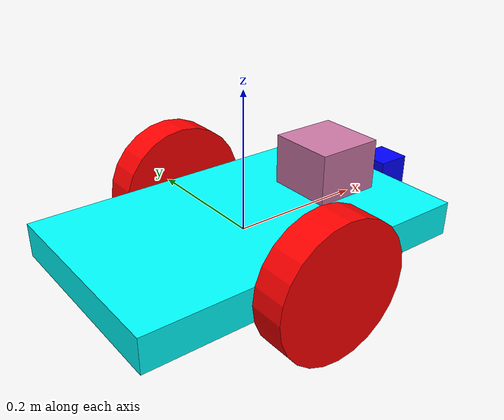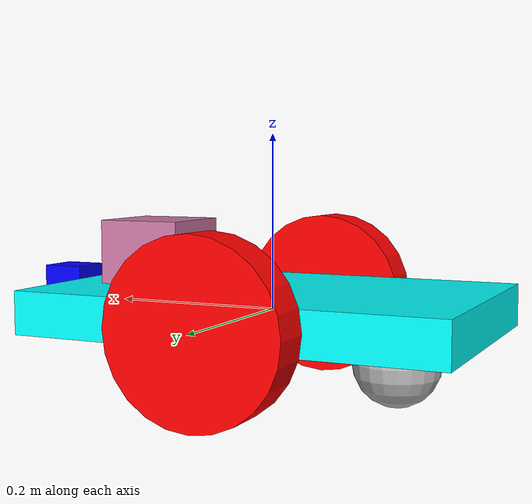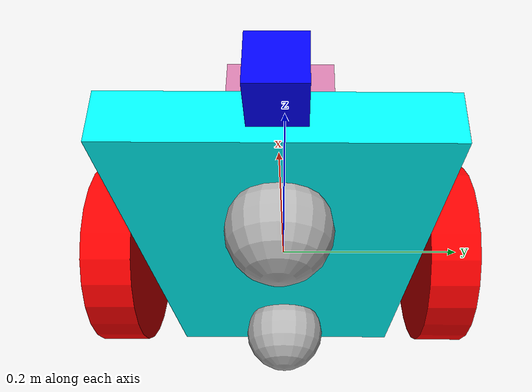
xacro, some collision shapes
<?xml version='1.0'?>

<robot name="my_robot" xmlns:xacro="http://www.ros.org/wiki/xacro">
  <xacro:include filename="$(find my_robot)/urdf/my_robot.gazebo" />

  <link name="robot_footprint"></link>

<link name="left_wheel">
		<visual>
			<origin xyz="0 0 0" rpy="0 1.5707 1.5707"/>
			<geometry>
				<cylinder length = "0.05" radius = "0.1"/>
			</geometry>
			<material name="red">
			  <color rgba = "1 0 0 1"/>
			</material>
		</visual>

		<collision>
			<origin xyz="0 0 0" rpy="0 1.5707 1.5707"/>
			<geometry>
				<cylinder length = "0.05" radius = "0.1"/>
			</geometry>

		</collision>

		<inertial>
      <mass value="5.0"/>
      <origin xyz="0.0 0 0" rpy=" 0 1.5707 1.5707"/>
      <inertia
          ixx="0.1" ixy="0" ixz="0"
          iyy="0.1" iyz="0"
          izz="0.1"
      />
    </inertial>

	</link>

	<link name="right_wheel">
		<visual>
			<origin xyz="0 0 0" rpy="0 1.5707 1.5707"/>
			<geometry>
				<cylinder length = "0.05" radius = "0.1"/>
			</geometry>
			<material name="red">
			  <color rgba = "1 0 0 1"/>
			</material>

		</visual>

		<collision>
			<origin xyz="0 0 0" rpy="0 1.5707 1.5707"/>
			<geometry>
				<cylinder length = "0.05" radius = "0.1"/>
			</geometry>

		</collision>

		<inertial>
      <mass value="5.0"/>
      <origin xyz="0.0 0 0" rpy=" 0 1.5707 1.5707"/>
      <inertia
          ixx="0.1" ixy="0" ixz="0"
          iyy="0.1" iyz="0"
          izz="0.1"
      />
    </inertial>

	</link>

	<link name="camera_rgbd_frame"></link>

<joint name="camera_rgbd_joint" type="fixed">
<origin xyz="0 0 0" rpy="-${pi/2} 0 -${pi/2}"/>
<parent link="camera"/>
<child link="camera_rgbd_frame"/>
</joint>

	<link name="camera">
	  <visual>
	    <geometry>
	      <box size="0.05 0.05 0.05"/>
	    </geometry>
	     <origin xyz="0 0 0" rpy="0 0 0"/>
	     <material name="blue">
			  <color rgba = "0 0 1 1"/>
			</material>
	  </visual>

	  <collision>
	  	<geometry>
	      <box size="0.05 0.05 0.05"/>
	    </geometry>
	    <origin xyz="0 0 0" rpy="0 0 0"/>
	  </collision>

	  <inertial>
	    <origin xyz="0 0 0" rpy="0 0 0"/>
	    <mass value="0.1"/>
	    <inertia
          ixx="1e-6" ixy="0" ixz="0"
          iyy="1e-6" iyz="0"
          izz="1e-6"
      	/>
	  </inertial>

	</link>

	  <joint name="camera_optical_joint" type="fixed">
    <origin xyz="0 0 0" rpy="-1.5707 0 -1.5707"/>
    <parent link="camera"/>
    <child link="camera_link_optical"/>
  </joint>

  <link name="camera_link_optical">
  </link>

	<link name="hokuyo">
	  <visual>
	    <origin xyz="0 0 0" rpy="0 0 0"/>
	    <geometry>
	      <mesh filename="package://my_robot/meshes/hokuyo.dae"/>
	    </geometry>
	  </visual>

	  <collision>
	    <origin xyz="0 0 0" rpy="0 0 0"/>
	    <geometry>
	      <box size="0.1 0.1 0.1"/>
	     </geometry>
	  </collision>

	  <inertial>
	    <origin xyz="0 0 0" rpy="0 0 0"/>
	    <mass value="1e-5"/>
	    <inertia
          ixx="1e-6" ixy="0" ixz="0"
          iyy="1e-6" iyz="0"
          izz="1e-6"
      	/>
	  </inertial>

	</link>

  <link name='chassis'>
    <pose>0 0 0.15 0 0 0</pose>

    <inertial>
      <mass value="15.0"/>
      <origin xyz="0.0 0 0" rpy=" 0 0 0"/>
      <inertia
          ixx="0.1" ixy="0" ixz="0"
          iyy="0.1" iyz="0"
          izz="0.1"
      />
    </inertial>

    <collision name='collision'>
      <origin xyz="0 0 0" rpy=" 0 0 0"/>
      <geometry>
        <box size=".5 .3 .05"/>
      </geometry>
    </collision>

    <visual name='chassis_visual'>
      <origin xyz="0 0 0" rpy=" 0 0 0"/>
      <geometry>
        <box size=".5 .3 .05"/>
      </geometry>
      <material name="cyan">
			  <color rgba = "0 1 1 1"/>
			</material>
    </visual>

    <collision name='back_caster_collision'>
      <origin xyz="-0.15 0 -0.05" rpy=" 0 0 0"/>
      <geometry>
        <sphere radius="0.0499"/>
      </geometry>
    </collision>

    <visual name='back_caster_visual'>
      <origin xyz="-0.15 0 -0.05" rpy=" 0 0 0"/>
      <geometry>
        <sphere radius="0.05"/>
      </geometry>
    </visual>

    <collision name='front_caster_collision'>
      <origin xyz="0.15 0 -0.05" rpy=" 0 0 0"/>
      <geometry>
        <sphere radius="0.0499"/>
      </geometry>
    </collision>

    <visual name='front_caster_visual'>
      <origin xyz="0.15 0 -0.05" rpy=" 0 0 0"/>
      <geometry>
        <sphere radius="0.05"/>
      </geometry>
    </visual>

  </link>

  <joint type="continuous" name="left_wheel_hinge">
    <origin xyz="0 -0.175 0" rpy="0 0 0"/>
    <child link="left_wheel"/>
    <parent link="chassis"/>
    <axis xyz="0 1 0" rpy="0 0 0"/>
    <limit effort="10000" velocity="1000"/>
    <dynamics damping="1.0" friction="1.0"/>
  </joint>

	<joint type="continuous" name="right_wheel_hinge">
    <origin xyz="0 0.175 0" rpy="0 0 0"/>
    <child link="right_wheel"/>
    <parent link="chassis"/>
    <axis xyz="0 1 0" rpy="0 0 0"/>
    <limit effort="10000" velocity="1000"/>
    <dynamics damping="1.0" friction="1.0"/>
  </joint>

  <joint type="fixed" name="camera_joint">
    <origin xyz="0.275 0 0.015" rpy="0 0 0"/>
    <child link="camera"/>
    <parent link="chassis"/>
    <axis xyz="0 1 0"/>
  </joint>

  <joint type="fixed" name="hokuyo_joint">
    <origin xyz="0.15 0 0.05" rpy="0 0 0"/>
    <child link="hokuyo"/>
    <parent link="chassis"/>
    <axis xyz="0 1 0"/>
  </joint>

  <joint name="robot_footprint_joint" type="fixed">
    <origin xyz="0 0 0" rpy="0 0 0" />
    <parent link="robot_footprint"/>
    <child link="chassis" />
  </joint>

</robot>
